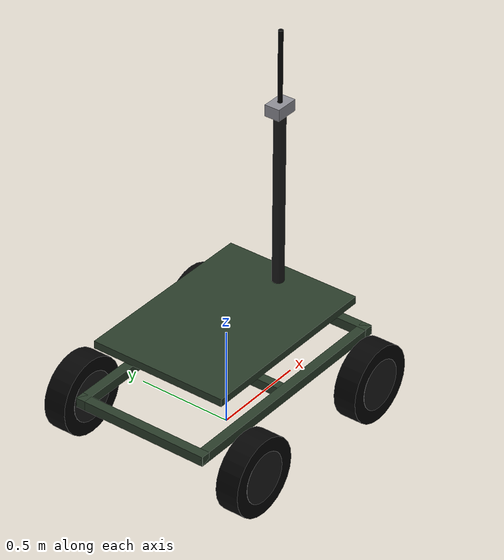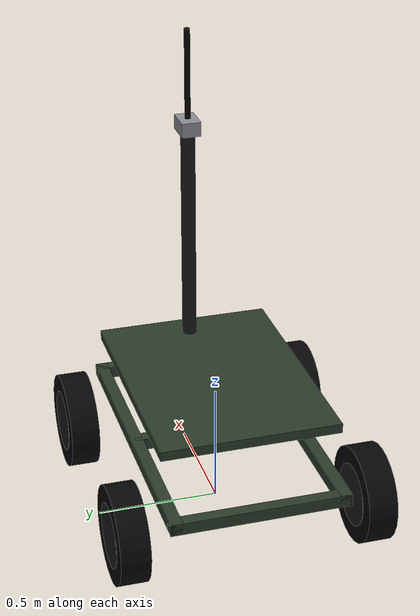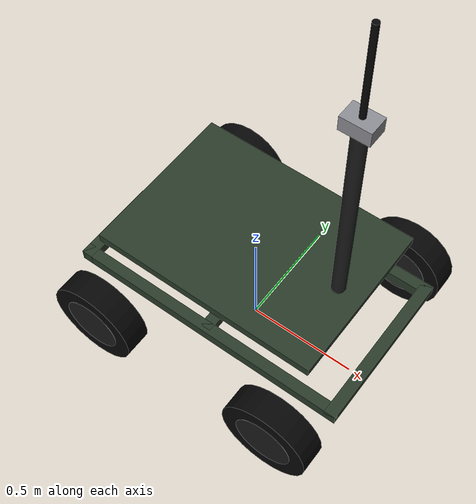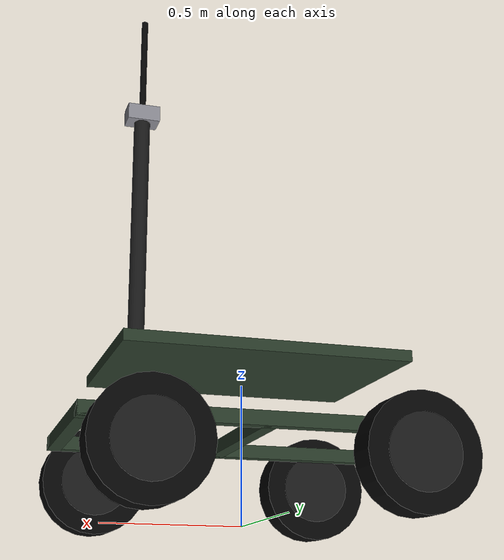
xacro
<?xml version="1.0"?>
<robot name="delivery_robot" xmlns:xacro="http://www.ros.org/wiki/xacro">

  <xacro:include filename="$(find delivery_robot_sim)/config/params.xacro"/>
  <xacro:include filename="$(find delivery_robot_sim)/urdf/plugins.xacro"/>

  <!-- ==================== Materials ==================== -->
  <material name="mat_green"><color rgba="0.16 0.23 0.16 1.0"/></material>
  <material name="mat_dark"><color rgba="0.10 0.10 0.10 1.0"/></material>
  <material name="mat_black"><color rgba="0.02 0.02 0.02 1.0"/></material>
  <material name="mat_metal"><color rgba="0.55 0.55 0.58 1.0"/></material>

  <!-- ==================== base_link ==================== -->
  <link name="base_link">
    <inertial>
      <origin xyz="0 0 0.10" rpy="0 0 0"/>
      <mass value="${base_mass}"/>
      <inertia ixx="3.0" ixy="0" ixz="0" iyy="6.0" iyz="0" izz="6.0"/>
    </inertial>
  </link>

  <!-- ==================== Frame beams (visual approximation) ==================== -->
  <xacro:property name="rail_thick" value="0.05"/>
  <xacro:property name="rail_z" value="${frame_clearance + 0.10}"/>

  <xacro:macro name="fixed_box" params="name sx sy sz x y z rr rp ry mat">
    <link name="${name}">
      <visual>
        <origin xyz="${x} ${y} ${z}" rpy="${rr} ${rp} ${ry}"/>
        <geometry><box size="${sx} ${sy} ${sz}"/></geometry>
        <material name="${mat}"/>
      </visual>
      <collision>
        <origin xyz="${x} ${y} ${z}" rpy="${rr} ${rp} ${ry}"/>
        <geometry><box size="${sx} ${sy} ${sz}"/></geometry>
      </collision>
    </link>
    <joint name="${name}_joint" type="fixed">
      <parent link="base_link"/>
      <child link="${name}"/>
      <origin xyz="0 0 0" rpy="0 0 0"/>
    </joint>
  </xacro:macro>

  <!-- Rails -->
  <xacro:fixed_box name="rail_left"
                   sx="${overall_length}" sy="${rail_thick}" sz="${rail_thick}"
                   x="0" y="${deck_width/2 - rail_thick/2}" z="${rail_z}"
                   rr="0" rp="0" ry="0" mat="mat_green"/>

  <xacro:fixed_box name="rail_right"
                   sx="${overall_length}" sy="${rail_thick}" sz="${rail_thick}"
                   x="0" y="${-deck_width/2 + rail_thick/2}" z="${rail_z}"
                   rr="0" rp="0" ry="0" mat="mat_green"/>

  <!-- Cross beams -->
  <xacro:fixed_box name="cross_front"
                   sx="${rail_thick}" sy="${deck_width}" sz="${rail_thick}"
                   x="${overall_length/2 - rail_thick/2}" y="0" z="${rail_z}"
                   rr="0" rp="0" ry="0" mat="mat_green"/>

  <xacro:fixed_box name="cross_rear"
                   sx="${rail_thick}" sy="${deck_width}" sz="${rail_thick}"
                   x="${-overall_length/2 + rail_thick/2}" y="0" z="${rail_z}"
                   rr="0" rp="0" ry="0" mat="mat_green"/>

  <xacro:fixed_box name="cross_mid"
                   sx="${rail_thick}" sy="${deck_width*0.95}" sz="${rail_thick}"
                   x="0" y="0" z="${rail_z}"
                   rr="0" rp="0" ry="0" mat="mat_green"/>

  <!-- Deck plate -->
  <xacro:fixed_box name="deck_plate"
                   sx="${deck_length}" sy="${deck_width}" sz="${deck_thickness}"
                   x="0" y="0" z="${deck_top_z - deck_thickness/2}"
                   rr="0" rp="0" ry="0" mat="mat_green"/>

  <!-- ==================== Mast + camera block + antenna ==================== -->
  <link name="mast_link">
    <visual>
      <origin xyz="0 0 ${camera_block_z/2}" rpy="0 0 0"/>
      <geometry><cylinder radius="${mast_radius}" length="${camera_block_z}"/></geometry>
      <material name="mat_dark"/>
    </visual>
    <collision>
      <origin xyz="0 0 ${camera_block_z/2}" rpy="0 0 0"/>
      <geometry><cylinder radius="${mast_radius}" length="${camera_block_z}"/></geometry>
    </collision>
  </link>
  <joint name="mast_joint" type="fixed">
    <parent link="base_link"/>
    <child link="mast_link"/>
    <origin xyz="${mast_offset_x} ${mast_offset_y} ${deck_top_z}" rpy="0 0 0"/>
  </joint><link name="camera_block_link">
    <visual>
      <origin xyz="0 0 ${camera_block_size_z/2}" rpy="0 0 0"/>
      <geometry><box size="${camera_block_size_x} ${camera_block_size_y} ${camera_block_size_z}"/></geometry>
      <material name="mat_metal"/>
    </visual>
    <collision>
      <origin xyz="0 0 ${camera_block_size_z/2}" rpy="0 0 0"/>
      <geometry><box size="${camera_block_size_x} ${camera_block_size_y} ${camera_block_size_z}"/></geometry>
    </collision>
  </link>
  <joint name="camera_block_joint" type="fixed">
    <parent link="mast_link"/>
    <child link="camera_block_link"/>
    <origin xyz="0 0 ${camera_block_z - 0.02}" rpy="0 0 0"/>
  </joint>

  <link name="antenna_link">
    <visual>
      <origin xyz="0 0 ${antenna_height/2}" rpy="0 0 0"/>
      <geometry><cylinder radius="${antenna_radius}" length="${antenna_height}"/></geometry>
      <material name="mat_black"/>
    </visual>
    <collision>
      <origin xyz="0 0 ${antenna_height/2}" rpy="0 0 0"/>
      <geometry><cylinder radius="${antenna_radius}" length="${antenna_height}"/></geometry>
    </collision>
  </link>
  <joint name="antenna_joint" type="fixed">
    <parent link="mast_link"/>
    <child link="antenna_link"/>
    <origin xyz="0 0 ${camera_block_z}" rpy="0 0 0"/>
  </joint>

  <!-- ==================== Wheels (tire + rim) ==================== -->
  <xacro:macro name="wheel" params="name x y">
    <link name="${name}">
      <inertial>
        <origin xyz="0 0 0" rpy="0 0 0"/>
        <mass value="${wheel_mass}"/>
        <inertia ixx="0.06" ixy="0" ixz="0" iyy="0.06" iyz="0" izz="0.06"/>
      </inertial>

      <!-- Tire -->
      <visual name="tire">
        <!-- IMPORTANT: rotate around X so cylinder axis becomes Y (wheel axle) -->
        <origin xyz="0 0 0" rpy="1.5708 0 0"/>
        <geometry><cylinder radius="${wheel_radius}" length="${wheel_width}"/></geometry>
        <material name="mat_black"/>
      </visual>

      <!-- Rim -->
      <visual name="rim">
        <origin xyz="0 0 0" rpy="1.5708 0 0"/>
        <geometry><cylinder radius="${wheel_radius*0.65}" length="${wheel_width*1.02}"/></geometry>
        <material name="mat_dark"/>
      </visual>

      <collision>
        <origin xyz="0 0 0" rpy="1.5708 0 0"/>
        <geometry><cylinder radius="${wheel_radius}" length="${wheel_width}"/></geometry>
      </collision>
    </link>

    <joint name="${name}_joint" type="continuous">
      <parent link="base_link"/>
      <child link="${name}"/>
      <origin xyz="${x} ${y} ${wheel_radius}" rpy="0 0 0"/>
      <axis xyz="0 1 0"/>
    </joint>

    <gazebo reference="${name}">
      <mu1>1.6</mu1>
      <mu2>1.6</mu2>
    </gazebo>
  </xacro:macro>

  <xacro:wheel name="wheel_fl" x="${ wheelbase/2}"  y="${ track_width/2}"/>
  <xacro:wheel name="wheel_fr" x="${ wheelbase/2}"  y="${-track_width/2}"/>
  <xacro:wheel name="wheel_rl" x="${-wheelbase/2}" y="${ track_width/2}"/>
  <xacro:wheel name="wheel_rr" x="${-wheelbase/2}" y="${-track_width/2}"/>

  <!-- ==================== Downward camera (SINGLE, no duplicates) ==================== -->
  <link name="line_cam_link">
    <visual>
      <origin xyz="0 0 0" rpy="0 0 0"/>
      <geometry><box size="0.06 0.06 0.03"/></geometry>
      <material name="mat_metal"/>
    </visual>
  </link>

  <joint name="line_cam_joint" type="fixed">
    <parent link="base_link"/>
    <child link="line_cam_link"/>
    <!-- forward and low -->
    <origin xyz="0.35 0 ${wheel_radius + 0.08}" rpy="0 0 0"/>
  </joint><gazebo reference="line_cam_link">
    <sensor name="line_camera" type="camera">
      <!-- look straight down -->
      <pose>0 0 0 -1.5708 0 0</pose>
      <camera>
        <horizontal_fov>1.2</horizontal_fov>
        <image>
          <width>640</width>
          <height>480</height>
          <format>R8G8B8</format>
        </image>
        <clip>
          <near>0.01</near>
          <far>10.0</far>
        </clip>
      </camera>
      <always_on>true</always_on>
      <update_rate>20</update_rate>
      <visualize>true</visualize>
      <!-- Gazebo Transport topic (no leading slash) -->
      <topic>line_camera</topic>
    </sensor>
  </gazebo>

</robot>

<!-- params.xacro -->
<robot xmlns:xacro="http://www.ros.org/wiki/xacro">

  <!-- ==================== MAIN DIMENSIONS (from drawings) ==================== -->
  <!-- All values in meters -->

  <!-- Overall length (side view): 1289 mm -->
  <xacro:property name="overall_length" value="1.289"/>

  <!-- Wheelbase (side view): 889 mm -->
  <xacro:property name="wheelbase" value="0.889"/>

  <!-- Track width (front view): 1000 mm (assumed wheel center-to-center) -->
  <xacro:property name="track_width" value="1.000"/>

  <!-- Wheel diameter: Ø400 mm -->
  <xacro:property name="wheel_diameter" value="0.400"/>
  <xacro:property name="wheel_radius" value="${wheel_diameter/2}"/>

  <!-- Wheel width (not explicitly on sheet; tweak if needed) -->
  <xacro:property name="wheel_width" value="0.120"/>

  <!-- Platform/deck size (top view shows ~1014 x 730 mm) -->
  <xacro:property name="deck_length" value="1.014"/>
  <xacro:property name="deck_width"  value="0.730"/>
  <xacro:property name="deck_thickness" value="0.040"/>

  <!-- Heights (from side view): -->
  <!-- deck top height ≈ 582 mm (interpreted) -->
  <xacro:property name="deck_top_z" value="0.582"/>

  <!-- mast heights: 929 mm to camera block, 1341 mm overall (interpreted) -->
  <xacro:property name="camera_block_z" value="0.929"/>
  <xacro:property name="mast_top_z" value="1.341"/>

  <!-- Frame clearance ~217 mm (interpreted) -->
  <xacro:property name="frame_clearance" value="0.217"/>

  <!-- Mast geometry -->
  <xacro:property name="mast_radius" value="0.030"/>
  <xacro:property name="mast_offset_x" value="${ wheelbase/2 - 0.05 }"/>  <!-- near front -->
  <xacro:property name="mast_offset_y" value="0.0"/>

  <!-- Camera block geometry -->
  <xacro:property name="camera_block_size_x" value="0.12"/>
  <xacro:property name="camera_block_size_y" value="0.08"/>
  <xacro:property name="camera_block_size_z" value="0.06"/>

  <!-- Antenna rod -->
  <xacro:property name="antenna_radius" value="0.012"/>
  <xacro:property name="antenna_height" value="${mast_top_z - camera_block_z}"/>

  <!-- Masses (rough; tune later) -->
  <xacro:property name="base_mass" value="45.0"/>
  <xacro:property name="deck_mass" value="10.0"/>
  <xacro:property name="mast_mass" value="3.0"/>
  <xacro:property name="wheel_mass" value="3.0"/>

</robot>
